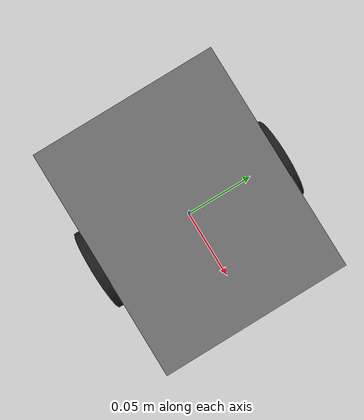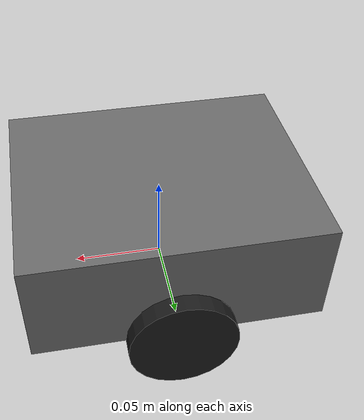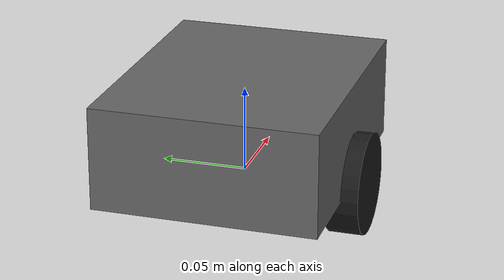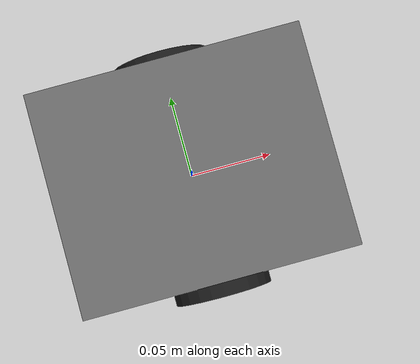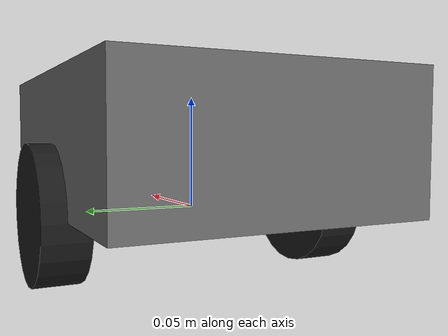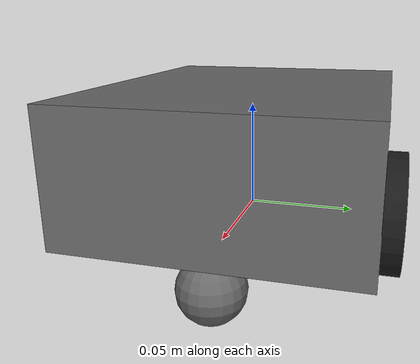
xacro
<?xml version="1.0"?>
<robot name="jetbot" xmlns:xacro="http://www.ros.org/wiki/xacro">

  <!-- Top-level xacro: accepts overrideable args so launch files can
       pass different port/baud/speed without editing URDF files. -->

  <xacro:arg name="port"                   default="/dev/ttyTHS1"/>
  <xacro:arg name="baud_rate"              default="115200"/>
  <xacro:arg name="max_wheel_speed_rad_s"  default="15.0"/>

  <!-- Include physical robot description (links, joints) -->
  <xacro:include filename="$(find robot_description)/urdf/jetbot_base.urdf.xacro"/>

  <!-- Include ros2_control hardware block -->
  <xacro:include filename="$(find robot_description)/urdf/jetbot.ros2_control.xacro"/>

  <!-- Instantiate the ros2_control macro with xacro args -->
  <xacro:jetbot_ros2_control
    port="$(arg port)"
    baud_rate="$(arg baud_rate)"
    max_wheel_speed_rad_s="$(arg max_wheel_speed_rad_s)"/>

</robot>

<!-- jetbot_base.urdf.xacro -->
<robot xmlns:xacro="http://www.ros.org/wiki/xacro">

  <xacro:property name="base_width"       value="0.130"/>
  <xacro:property name="base_length"      value="0.160"/>
  <xacro:property name="base_height"      value="0.060"/>
  <xacro:property name="wheel_radius"     value="0.030"/>
  <xacro:property name="wheel_thickness"  value="0.020"/>
  <xacro:property name="wheel_separation" value="0.130"/>
  <xacro:property name="caster_radius"    value="0.015"/>

  <!-- Base link (chassis centre at wheel axle height) -->
  <link name="base_link">
    <visual>
      <origin xyz="0 0 ${base_height/2}" rpy="0 0 0"/>
      <geometry>
        <box size="${base_length} ${base_width} ${base_height}"/>
      </geometry>
      <material name="grey">
        <color rgba="0.4 0.4 0.4 1.0"/>
      </material>
    </visual>
    <collision>
      <origin xyz="0 0 ${base_height/2}" rpy="0 0 0"/>
      <geometry>
        <box size="${base_length} ${base_width} ${base_height}"/>
      </geometry>
    </collision>
    <inertial>
      <mass value="1.0"/>
      <origin xyz="0 0 ${base_height/2}"/>
      <inertia
        ixx="0.01" ixy="0" ixz="0"
        iyy="0.01" iyz="0"
        izz="0.01"/>
    </inertial>
  </link>

  <!-- Left wheel -->
  <link name="left_wheel">
    <visual>
      <origin xyz="0 0 0" rpy="${pi/2} 0 0"/>
      <geometry>
        <cylinder radius="${wheel_radius}" length="${wheel_thickness}"/>
      </geometry>
      <material name="black">
        <color rgba="0.1 0.1 0.1 1.0"/>
      </material>
    </visual>
    <collision>
      <origin xyz="0 0 0" rpy="${pi/2} 0 0"/>
      <geometry>
        <cylinder radius="${wheel_radius}" length="${wheel_thickness}"/>
      </geometry>
    </collision>
    <inertial>
      <mass value="0.1"/>
      <origin xyz="0 0 0"/>
      <inertia
        ixx="0.0001" ixy="0" ixz="0"
        iyy="0.0001" iyz="0"
        izz="0.0001"/>
    </inertial>
  </link>

  <joint name="left_wheel_joint" type="continuous">
    <parent link="base_link"/>
    <child link="left_wheel"/>
    <origin xyz="0 ${wheel_separation/2} 0" rpy="0 0 0"/>
    <axis xyz="0 1 0"/>
  </joint>

  <!-- Right wheel -->
  <link name="right_wheel">
    <visual>
      <origin xyz="0 0 0" rpy="${pi/2} 0 0"/>
      <geometry>
        <cylinder radius="${wheel_radius}" length="${wheel_thickness}"/>
      </geometry>
      <material name="black"/>
    </visual>
    <collision>
      <origin xyz="0 0 0" rpy="${pi/2} 0 0"/>
      <geometry>
        <cylinder radius="${wheel_radius}" length="${wheel_thickness}"/>
      </geometry>
    </collision>
    <inertial>
      <mass value="0.1"/>
      <origin xyz="0 0 0"/>
      <inertia
        ixx="0.0001" ixy="0" ixz="0"
        iyy="0.0001" iyz="0"
        izz="0.0001"/>
    </inertial>
  </link>

  <joint name="right_wheel_joint" type="continuous">
    <parent link="base_link"/>
    <child link="right_wheel"/>
    <origin xyz="0 ${-wheel_separation/2} 0" rpy="0 0 0"/>
    <axis xyz="0 1 0"/>
  </joint>

  <!-- Front caster wheel (passive) -->
  <link name="caster_wheel">
    <visual>
      <origin xyz="0 0 0" rpy="0 0 0"/>
      <geometry>
        <sphere radius="${caster_radius}"/>
      </geometry>
      <material name="grey"/>
    </visual>
    <collision>
      <origin xyz="0 0 0" rpy="0 0 0"/>
      <geometry>
        <sphere radius="${caster_radius}"/>
      </geometry>
    </collision>
    <inertial>
      <mass value="0.05"/>
      <origin xyz="0 0 0"/>
      <inertia
        ixx="0.00001" ixy="0" ixz="0"
        iyy="0.00001" iyz="0"
        izz="0.00001"/>
    </inertial>
  </link>

  <joint name="caster_wheel_joint" type="fixed">
    <parent link="base_link"/>
    <child link="caster_wheel"/>
    <origin xyz="${base_length/2 - caster_radius} 0 ${-caster_radius}" rpy="0 0 0"/>
  </joint>

</robot>
